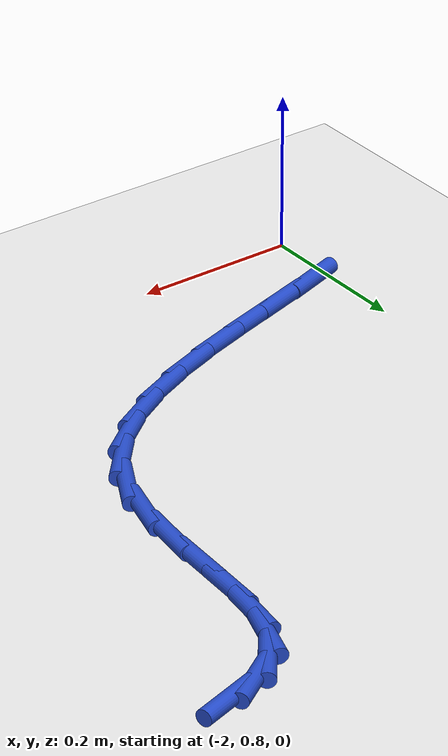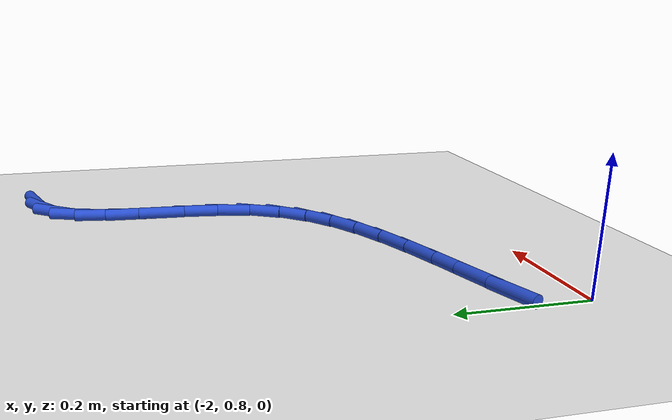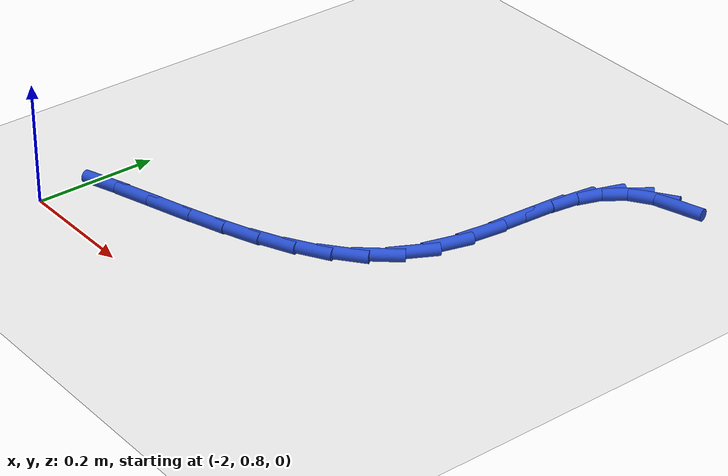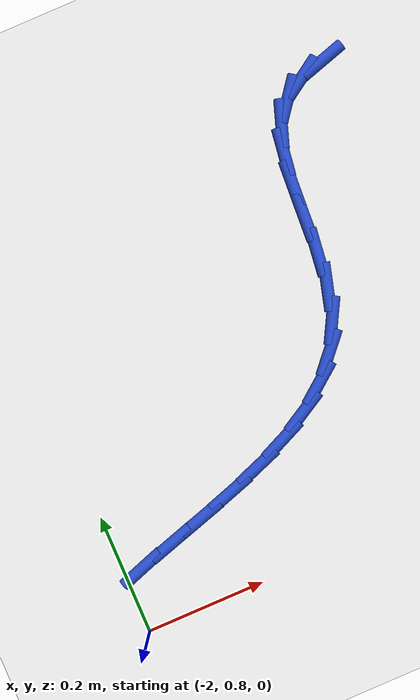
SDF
<sdf version="1.6">
 <world name="default">
  <model name="ground_plane">
   <static>1</static>
   <link name="link">
    <collision name="collision">
     <geometry><plane><normal>0 0 1</normal><size>100 100</size></plane></geometry>
     <surface><friction><ode><mu>100</mu><mu2>50</mu2></ode></friction></surface>
    </collision>
    <visual name="visual">
     <cast_shadows>0</cast_shadows>
     <geometry><plane><normal>0 0 1</normal><size>100 100</size></plane></geometry>
     <material>
      <script><uri>file://media/materials/scripts/gazebo.material</uri><name>Gazebo/WhiteGlow</name></script>
     </material>
    </visual>
   </link>
  </model>
  <model name="line">
   <link name="link_38">
    <pose>-1.3775213593889948 1.5379212217185558 0.01 0 1.57 0.29626181070779095</pose>
    <collision name="collision">
     <geometry><cylinder><radius>0.01</radius><length>0.08</length></cylinder></geometry>
    </collision>
    <visual name="visual">
     <material>
      <script><name>Gazebo/Blue</name><uri>file://media/materials/scripts/gazebo.material</uri></script>
     </material>
     <geometry><cylinder><radius>0.01</radius><length>0.08</length></cylinder></geometry>
    </visual>
   </link>
   <link name="link_39">
    <pose>-1.4195450096597522 1.5250937096983583 0.01 0 1.57 0.5829797039190706</pose>
    <collision name="collision">
     <geometry><cylinder><radius>0.01</radius><length>0.08</length></cylinder></geometry>
    </collision>
    <visual name="visual">
     <material>
      <script><name>Gazebo/Blue</name><uri>file://media/materials/scripts/gazebo.material</uri></script>
     </material>
     <geometry><cylinder><radius>0.01</radius><length>0.08</length></cylinder></geometry>
    </visual>
   </link>
   <link name="link_40">
    <pose>-1.4535689896686494 1.5026570887281605 0.01 0 1.57 0.9227330337978142</pose>
    <collision name="collision">
     <geometry><cylinder><radius>0.01</radius><length>0.08</length></cylinder></geometry>
    </collision>
    <visual name="visual">
     <material>
      <script><name>Gazebo/Blue</name><uri>file://media/materials/scripts/gazebo.material</uri></script>
     </material>
     <geometry><cylinder><radius>0.01</radius><length>0.08</length></cylinder></geometry>
    </visual>
   </link>
   <link name="link_41">
    <pose>-1.4784209394559236 1.4698341958012195 0.01 0 1.57 1.2414089775007526</pose>
    <collision name="collision">
     <geometry><cylinder><radius>0.01</radius><length>0.08</length></cylinder></geometry>
    </collision>
    <visual name="visual">
     <material>
      <script><name>Gazebo/Blue</name><uri>file://media/materials/scripts/gazebo.material</uri></script>
     </material>
     <geometry><cylinder><radius>0.01</radius><length>0.08</length></cylinder></geometry>
    </visual>
   </link>
   <link name="link_42">
    <pose>-1.4933390667105304 1.4261935855369068 0.01 0 1.57 1.431590275779909</pose>
    <collision name="collision">
     <geometry><cylinder><radius>0.01</radius><length>0.08</length></cylinder></geometry>
    </collision>
    <visual name="visual">
     <material>
      <script><name>Gazebo/Blue</name><uri>file://media/materials/scripts/gazebo.material</uri></script>
     </material>
     <geometry><cylinder><radius>0.01</radius><length>0.08</length></cylinder></geometry>
    </visual>
   </link>
   <link name="link_43">
    <pose>-1.5006637941841112 1.373916026231228 0.01 0 1.57 1.5102315090465772</pose>
    <collision name="collision">
     <geometry><cylinder><radius>0.01</radius><length>0.08</length></cylinder></geometry>
    </collision>
    <visual name="visual">
     <material>
      <script><name>Gazebo/Blue</name><uri>file://media/materials/scripts/gazebo.material</uri></script>
     </material>
     <geometry><cylinder><radius>0.01</radius><length>0.08</length></cylinder></geometry>
    </visual>
   </link>
   <link name="link_44">
    <pose>-1.504152973015457 1.3163758287759606 0.01 0 1.57 1.5133263690842145</pose>
    <collision name="collision">
     <geometry><cylinder><radius>0.01</radius><length>0.08</length></cylinder></geometry>
    </collision>
    <visual name="visual">
     <material>
      <script><name>Gazebo/Blue</name><uri>file://media/materials/scripts/gazebo.material</uri></script>
     </material>
     <geometry><cylinder><radius>0.01</radius><length>0.08</length></cylinder></geometry>
    </visual>
   </link>
   <link name="link_45">
    <pose>-1.5075717399099797 1.2569534388589496 0.01 0 1.57 1.4486011358255213</pose>
    <collision name="collision">
     <geometry><cylinder><radius>0.01</radius><length>0.08</length></cylinder></geometry>
    </collision>
    <visual name="visual">
     <material>
      <script><name>Gazebo/Blue</name><uri>file://media/materials/scripts/gazebo.material</uri></script>
     </material>
     <geometry><cylinder><radius>0.01</radius><length>0.08</length></cylinder></geometry>
    </visual>
   </link>
   <link name="link_46">
    <pose>-1.514685231573094 1.1990293021680443 0.01 0 1.57 1.3026847288186552</pose>
    <collision name="collision">
     <geometry><cylinder><radius>0.01</radius><length>0.08</length></cylinder></geometry>
    </collision>
    <visual name="visual">
     <material>
      <script><name>Gazebo/Blue</name><uri>file://media/materials/scripts/gazebo.material</uri></script>
     </material>
     <geometry><cylinder><radius>0.01</radius><length>0.08</length></cylinder></geometry>
    </visual>
   </link>
   <link name="link_47">
    <pose>-1.529258272828922 1.1459836012198021 0.01 0 1.57 1.0746102355254372</pose>
    <collision name="collision">
     <geometry><cylinder><radius>0.01</radius><length>0.08</length></cylinder></geometry>
    </collision>
    <visual name="visual">
     <material>
      <script><name>Gazebo/Blue</name><uri>file://media/materials/scripts/gazebo.material</uri></script>
     </material>
     <geometry><cylinder><radius>0.01</radius><length>0.08</length></cylinder></geometry>
    </visual>
   </link>
   <link name="link_48">
    <pose>-1.5539907224668497 1.1002978801974856 0.01 0 1.57 0.8484842545476882</pose>
    <collision name="collision">
     <geometry><cylinder><radius>0.01</radius><length>0.08</length></cylinder></geometry>
    </collision>
    <visual name="visual">
     <material>
      <script><name>Gazebo/Blue</name><uri>file://media/materials/scripts/gazebo.material</uri></script>
     </material>
     <geometry><cylinder><radius>0.01</radius><length>0.08</length></cylinder></geometry>
    </visual>
   </link>
   <link name="link_49">
    <pose>-1.5881371606472665 1.0615464924971214 0.01 0 1.57 0.6620757254218073</pose>
    <collision name="collision">
     <geometry><cylinder><radius>0.01</radius><length>0.08</length></cylinder></geometry>
    </collision>
    <visual name="visual">
     <material>
      <script><name>Gazebo/Blue</name><uri>file://media/materials/scripts/gazebo.material</uri></script>
     </material>
     <geometry><cylinder><radius>0.01</radius><length>0.08</length></cylinder></geometry>
    </visual>
   </link>
   <link name="link_50">
    <pose>-1.6302567318096302 1.0287169697976213 0.01 0 1.57 0.520989119092816</pose>
    <collision name="collision">
     <geometry><cylinder><radius>0.01</radius><length>0.08</length></cylinder></geometry>
    </collision>
    <visual name="visual">
     <material>
      <script><name>Gazebo/Blue</name><uri>file://media/materials/scripts/gazebo.material</uri></script>
     </material>
     <geometry><cylinder><radius>0.01</radius><length>0.08</length></cylinder></geometry>
    </visual>
   </link>
   <link name="link_51">
    <pose>-1.6789085803933976 1.0007968437778978 0.01 0 1.57 0.4203556389696027</pose>
    <collision name="collision">
     <geometry><cylinder><radius>0.01</radius><length>0.08</length></cylinder></geometry>
    </collision>
    <visual name="visual">
     <material>
      <script><name>Gazebo/Blue</name><uri>file://media/materials/scripts/gazebo.material</uri></script>
     </material>
     <geometry><cylinder><radius>0.01</radius><length>0.08</length></cylinder></geometry>
    </visual>
   </link>
   <link name="link_52">
    <pose>-1.7326518508380266 0.9767736461168623 0.01 0 1.57 0.35289281265418443</pose>
    <collision name="collision">
     <geometry><cylinder><radius>0.01</radius><length>0.08</length></cylinder></geometry>
    </collision>
    <visual name="visual">
     <material>
      <script><name>Gazebo/Blue</name><uri>file://media/materials/scripts/gazebo.material</uri></script>
     </material>
     <geometry><cylinder><radius>0.01</radius><length>0.08</length></cylinder></geometry>
    </visual>
   </link>
   <link name="link_53">
    <pose>-1.7900456875829733 0.9556349084934267 0.01 0 1.57 0.31264673916821545</pose>
    <collision name="collision">
     <geometry><cylinder><radius>0.01</radius><length>0.08</length></cylinder></geometry>
    </collision>
    <visual name="visual">
     <material>
      <script><name>Gazebo/Blue</name><uri>file://media/materials/scripts/gazebo.material</uri></script>
     </material>
     <geometry><cylinder><radius>0.01</radius><length>0.08</length></cylinder></geometry>
    </visual>
   </link>
   <link name="link_54">
    <pose>-1.8496492350676965 0.936368162586503 0.01 0 1.57 0.29594122671655926</pose>
    <collision name="collision">
     <geometry><cylinder><radius>0.01</radius><length>0.08</length></cylinder></geometry>
    </collision>
    <visual name="visual">
     <material>
      <script><name>Gazebo/Blue</name><uri>file://media/materials/scripts/gazebo.material</uri></script>
     </material>
     <geometry><cylinder><radius>0.01</radius><length>0.08</length></cylinder></geometry>
    </visual>
   </link>
   <link name="link_55">
    <pose>-1.910021637731653 0.9179609400750037 0.01 0 1.57 0.3014160509819723</pose>
    <collision name="collision">
     <geometry><cylinder><radius>0.01</radius><length>0.08</length></cylinder></geometry>
    </collision>
    <visual name="visual">
     <material>
      <script><name>Gazebo/Blue</name><uri>file://media/materials/scripts/gazebo.material</uri></script>
     </material>
     <geometry><cylinder><radius>0.01</radius><length>0.08</length></cylinder></geometry>
    </visual>
   </link>
   <link name="link_56">
    <pose>-1.9697220400142996 0.8994007726378398 0.01 0 1.57 0.33000643419502806</pose>
    <collision name="collision">
     <geometry><cylinder><radius>0.01</radius><length>0.08</length></cylinder></geometry>
    </collision>
    <visual name="visual">
     <material>
      <script><name>Gazebo/Blue</name><uri>file://media/materials/scripts/gazebo.material</uri></script>
     </material>
     <geometry><cylinder><radius>0.01</radius><length>0.08</length></cylinder></geometry>
    </visual>
   </link>
  </model>
 </world>
</sdf>
